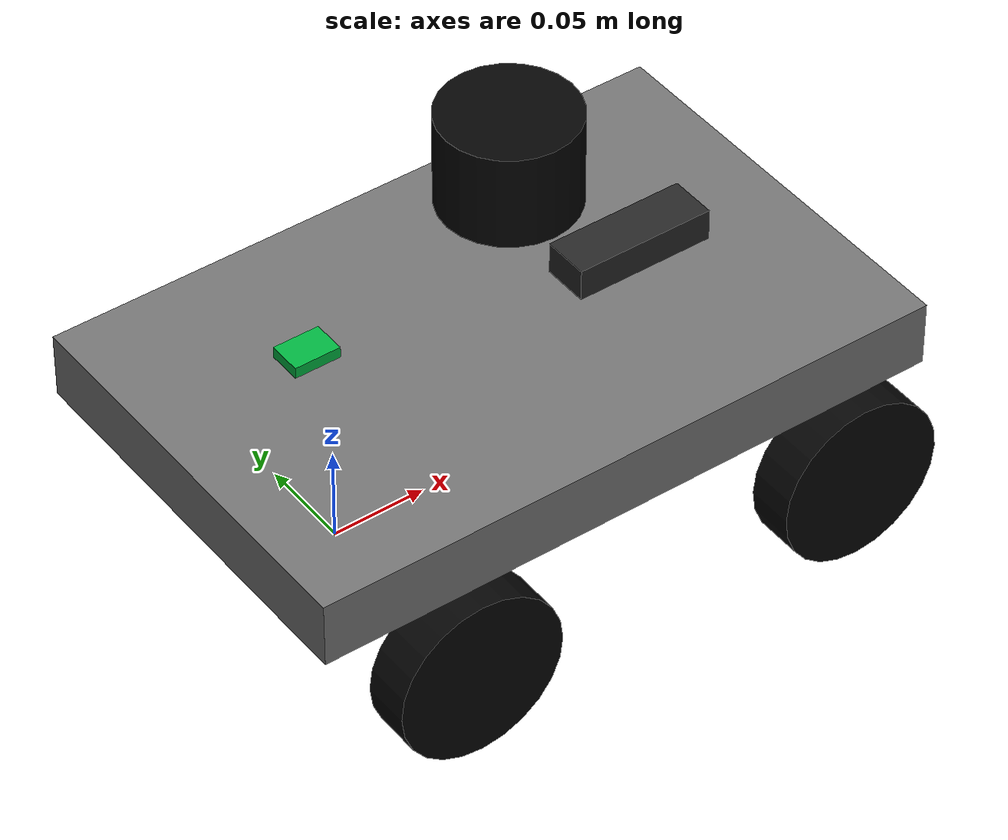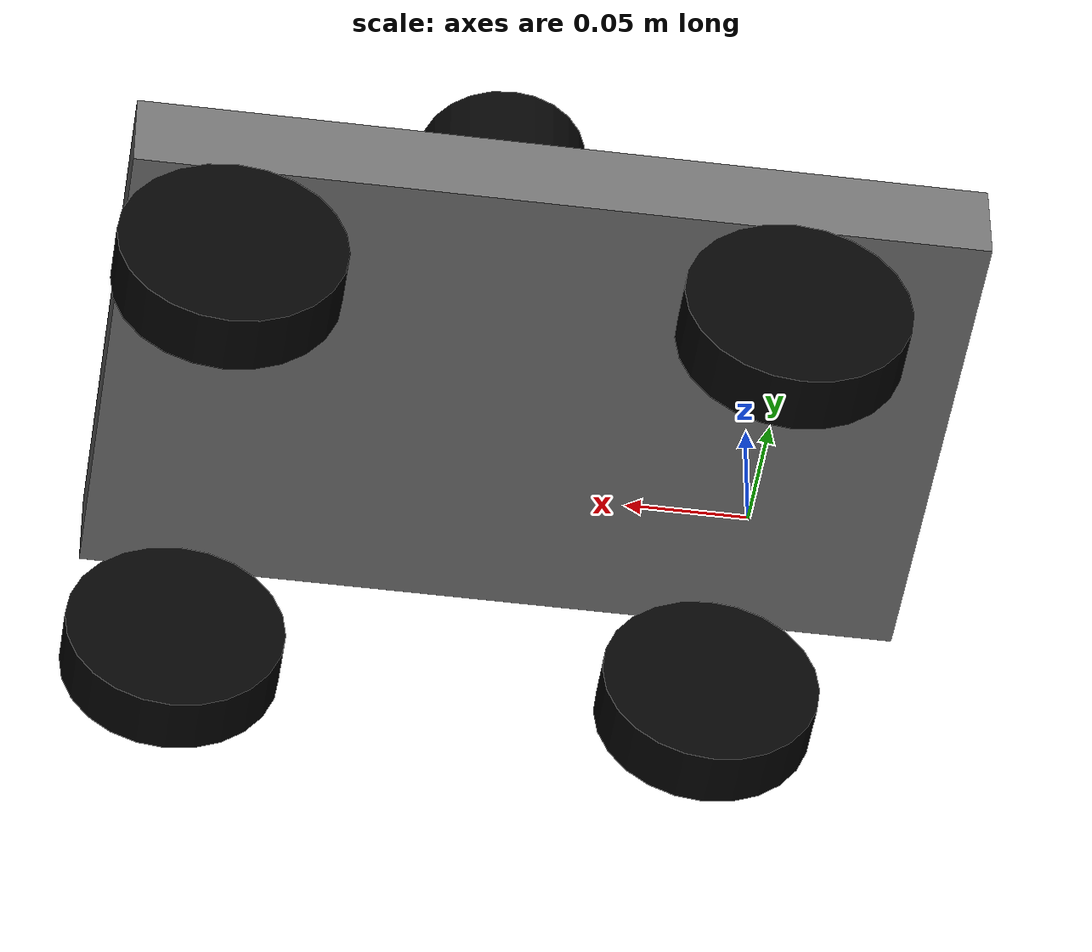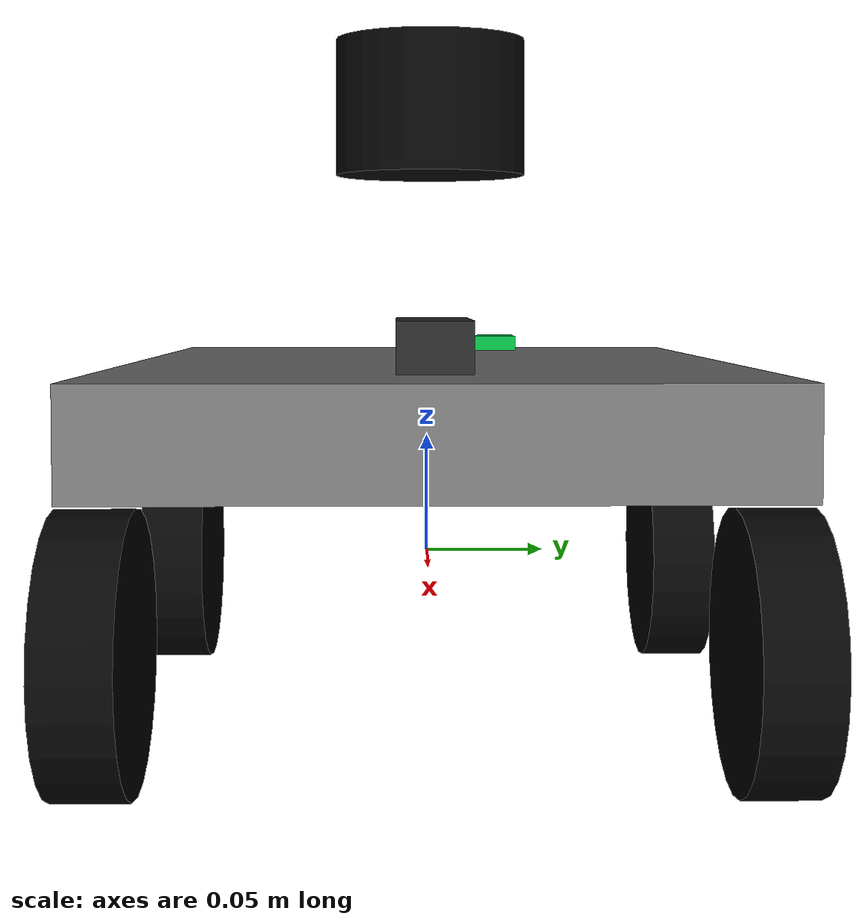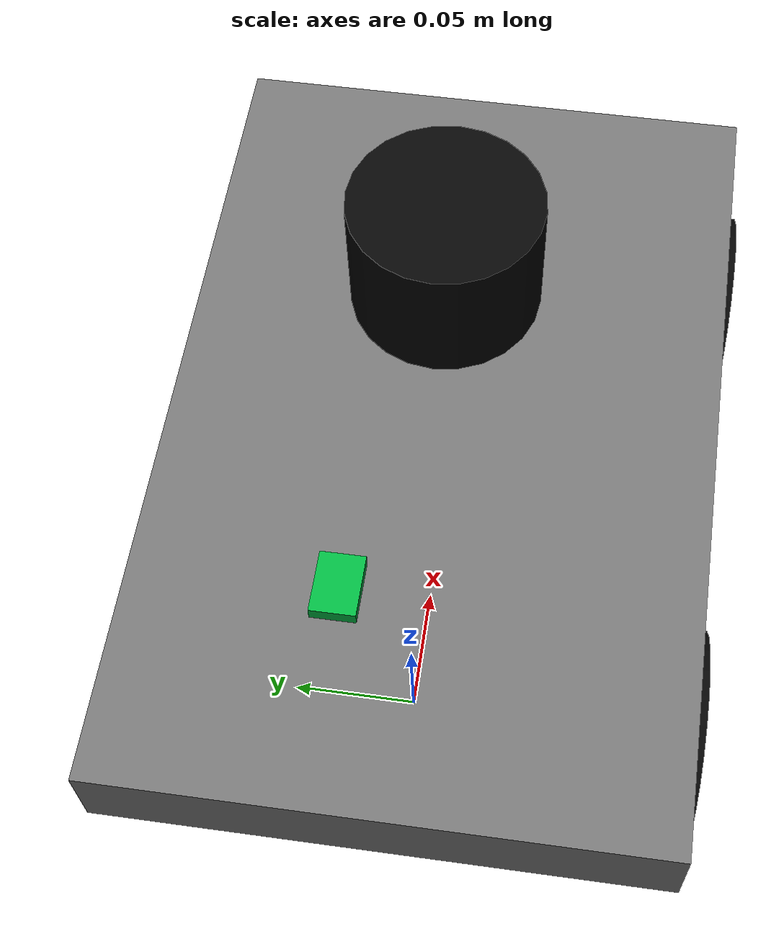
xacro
<?xml version="1.0"?>
<robot name="digua_robot" xmlns:xacro="http://www.ros.org/wiki/xacro">

  <!-- Basic dimensions           -->

  <xacro:property name="base_link_z" value="0.068"/>

  <!-- Chassis visual size, only for RViz display -->
  <xacro:property name="chassis_length" value="0.34"/>
  <xacro:property name="chassis_width"  value="0.22"/>
  <xacro:property name="chassis_height" value="0.035"/>

  <!-- Sensor positions relative to base_link -->
  <xacro:property name="lidar_x" value="0.100"/>
  <xacro:property name="lidar_y" value="0.000"/>
  <xacro:property name="lidar_z" value="0.087"/>

  <xacro:property name="camera_x" value="0.170"/>
  <xacro:property name="camera_y" value="0.000"/>
  <xacro:property name="camera_z" value="0.022"/>

  <xacro:property name="imu_x" value="0.006"/>
  <xacro:property name="imu_y" value="0.028"/>
  <xacro:property name="imu_z" value="0.022"/>

  <!-- Materials                  -->

  <material name="black">
    <color rgba="0.02 0.02 0.02 1.0"/>
  </material>

  <material name="gray">
    <color rgba="0.45 0.45 0.45 1.0"/>
  </material>

  <material name="dark_gray">
    <color rgba="0.15 0.15 0.15 1.0"/>
  </material>

  <material name="blue">
    <color rgba="0.0 0.25 0.9 1.0"/>
  </material>

  <material name="green">
    <color rgba="0.0 0.7 0.25 1.0"/>
  </material>

  <material name="red">
    <color rgba="0.9 0.0 0.0 1.0"/>
  </material>

  <!-- Links                      -->

  <!-- Ground projection frame -->
  <link name="base_footprint"/>

  <!-- Main robot body frame -->
  <link name="base_link">
    <visual>
      <!-- Make the visual chassis extend mostly forward from the rear axle -->
      <origin xyz="0.09 0 0" rpy="0 0 0"/>
      <geometry>
        <box size="${chassis_length} ${chassis_width} ${chassis_height}"/>
      </geometry>
      <material name="gray"/>
    </visual>
  </link>

  <!-- YDLIDAR X2 frame -->
  <link name="laser_frame">
    <visual>
      <origin xyz="0 0 0.025" rpy="0 0 0"/>
      <geometry>
        <cylinder radius="0.035" length="0.05"/>
      </geometry>
      <material name="black"/>
    </visual>
  </link>

  <!-- Astra S camera base frame.
       Do NOT define color/depth/optical frames here.
       Let astra_camera publish its own internal camera frames. -->
  <link name="camera_link">
    <visual>
      <origin xyz="0 0 0" rpy="0 0 0"/>
      <geometry>
        <box size="0.075 0.025 0.025"/>
      </geometry>
      <material name="dark_gray"/>
    </visual>
  </link>

  <!-- IMU frame -->
  <link name="imu">
    <visual>
      <origin xyz="0 0 0" rpy="0 0 0"/>
      <geometry>
        <box size="0.025 0.018 0.006"/>
      </geometry>
      <material name="green"/>
    </visual>
  </link>

  <!-- Optional simple wheel visuals, only for RViz display -->
  <link name="front_left_wheel_visual">
    <visual>
      <origin xyz="0 0 0" rpy="1.5708 0 0"/>
      <geometry>
        <cylinder radius="0.045" length="0.025"/>
      </geometry>
      <material name="black"/>
    </visual>
  </link>

  <link name="front_right_wheel_visual">
    <visual>
      <origin xyz="0 0 0" rpy="1.5708 0 0"/>
      <geometry>
        <cylinder radius="0.045" length="0.025"/>
      </geometry>
      <material name="black"/>
    </visual>
  </link>

  <link name="rear_left_wheel_visual">
    <visual>
      <origin xyz="0 0 0" rpy="1.5708 0 0"/>
      <geometry>
        <cylinder radius="0.045" length="0.025"/>
      </geometry>
      <material name="black"/>
    </visual>
  </link>

  <link name="rear_right_wheel_visual">
    <visual>
      <origin xyz="0 0 0" rpy="1.5708 0 0"/>
      <geometry>
        <cylinder radius="0.045" length="0.025"/>
      </geometry>
      <material name="black"/>
    </visual>
  </link>

  <!-- Fixed joints               -->

  <joint name="base_footprint_to_base_link" type="fixed">
    <parent link="base_footprint"/>
    <child link="base_link"/>
    <origin xyz="0 0 ${base_link_z}" rpy="0 0 0"/>
  </joint>

  <joint name="base_link_to_laser_frame" type="fixed">
    <parent link="base_link"/>
    <child link="laser_frame"/>
    <origin xyz="${lidar_x} ${lidar_y} ${lidar_z}" rpy="0 0 0"/>
  </joint>

  <joint name="base_link_to_camera_link" type="fixed">
    <parent link="base_link"/>
    <child link="camera_link"/>
    <origin xyz="${camera_x} ${camera_y} ${camera_z}" rpy="0 0 0"/>
  </joint>

  <joint name="base_link_to_imu" type="fixed">
    <parent link="base_link"/>
    <child link="imu"/>
    <origin xyz="${imu_x} ${imu_y} ${imu_z}" rpy="0 0 0"/>
  </joint>

  <!-- Wheel visuals relative to base_link.
       Rear axle center is directly below base_link, so rear wheels are near x=0. -->
  <joint name="base_link_to_front_left_wheel_visual" type="fixed">
    <parent link="base_link"/>
    <child link="front_left_wheel_visual"/>
    <origin xyz="0.22 0.105 -0.068" rpy="0 0 0"/>
  </joint>

  <joint name="base_link_to_front_right_wheel_visual" type="fixed">
    <parent link="base_link"/>
    <child link="front_right_wheel_visual"/>
    <origin xyz="0.22 -0.105 -0.068" rpy="0 0 0"/>
  </joint>

  <joint name="base_link_to_rear_left_wheel_visual" type="fixed">
    <parent link="base_link"/>
    <child link="rear_left_wheel_visual"/>
    <origin xyz="0.00 0.105 -0.068" rpy="0 0 0"/>
  </joint>

  <joint name="base_link_to_rear_right_wheel_visual" type="fixed">
    <parent link="base_link"/>
    <child link="rear_right_wheel_visual"/>
    <origin xyz="0.00 -0.105 -0.068" rpy="0 0 0"/>
  </joint>

</robot>
